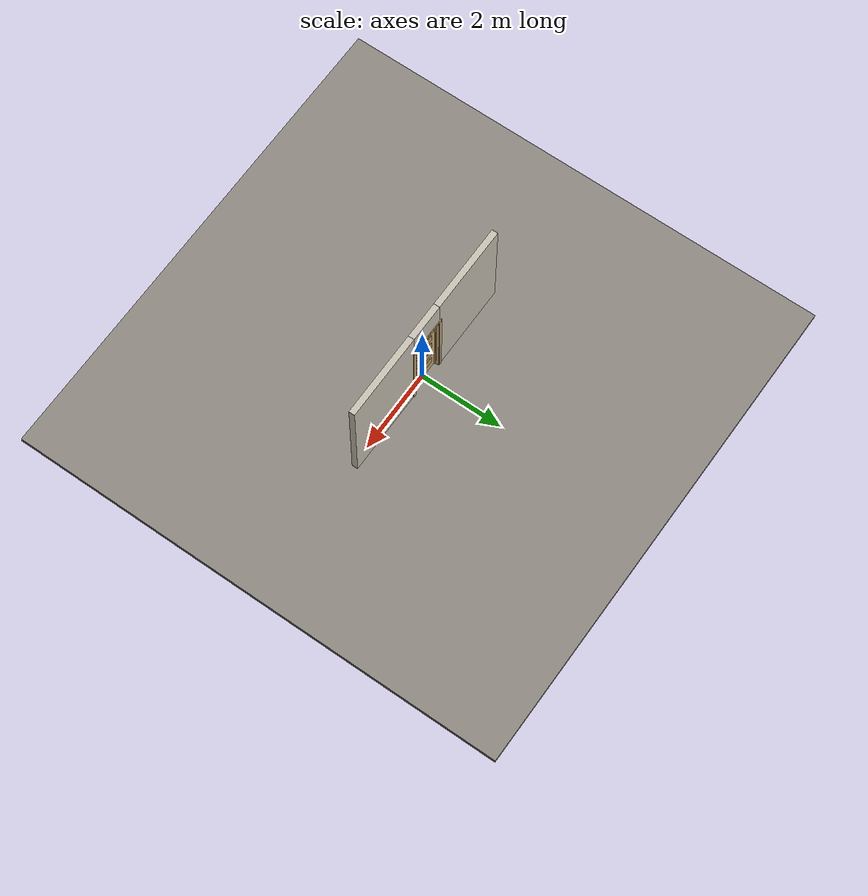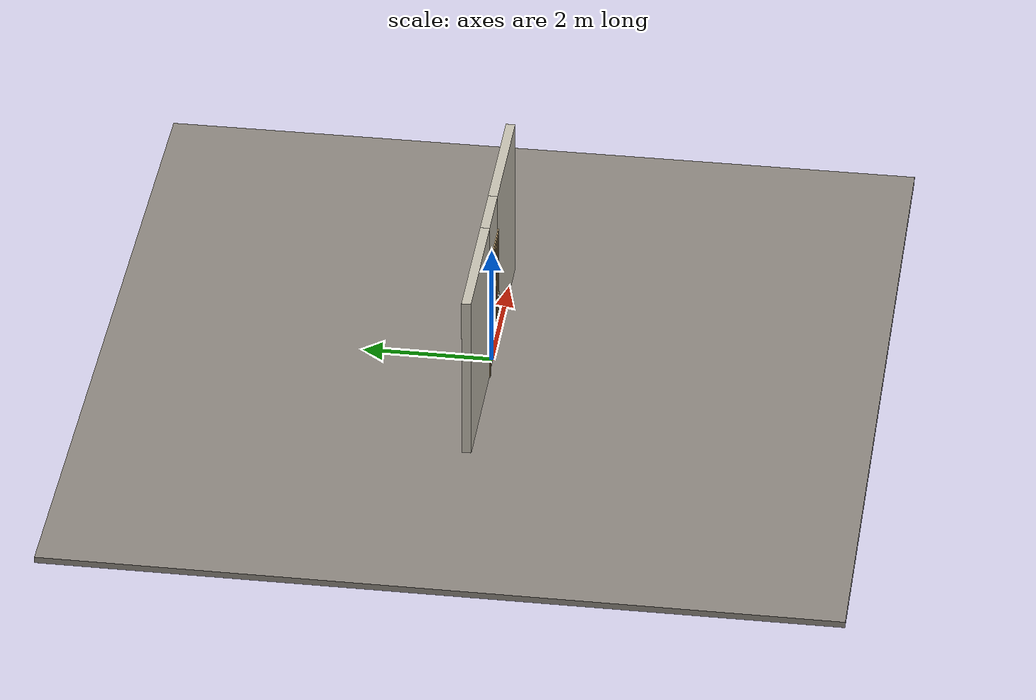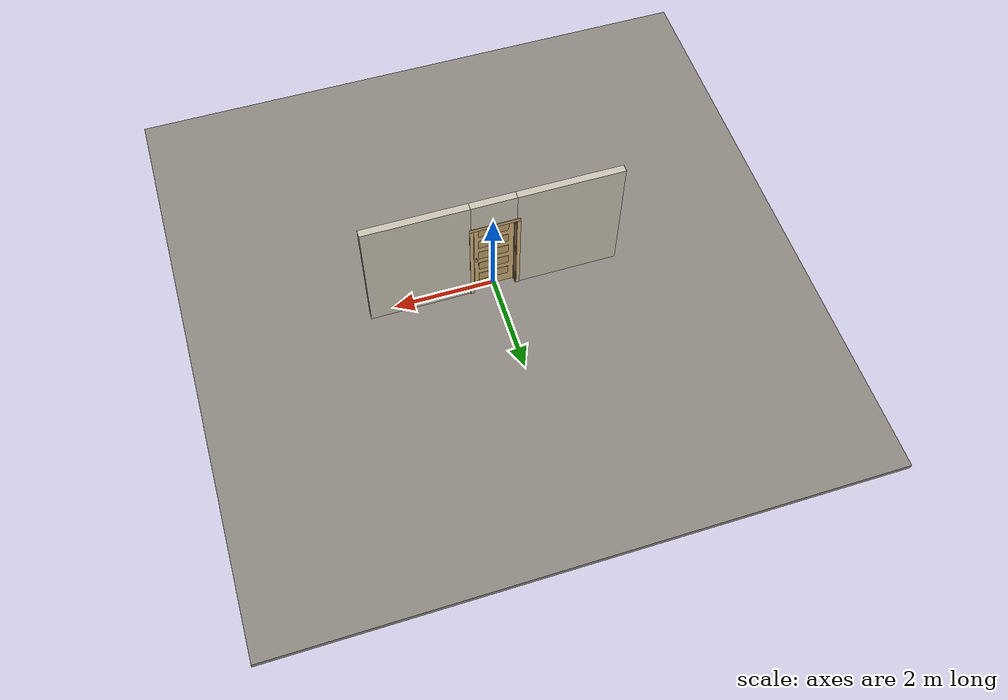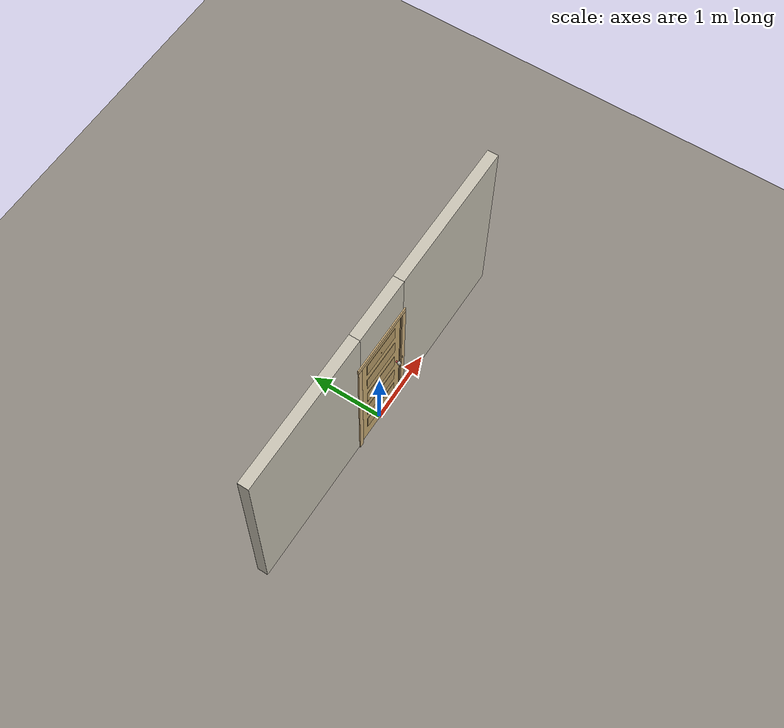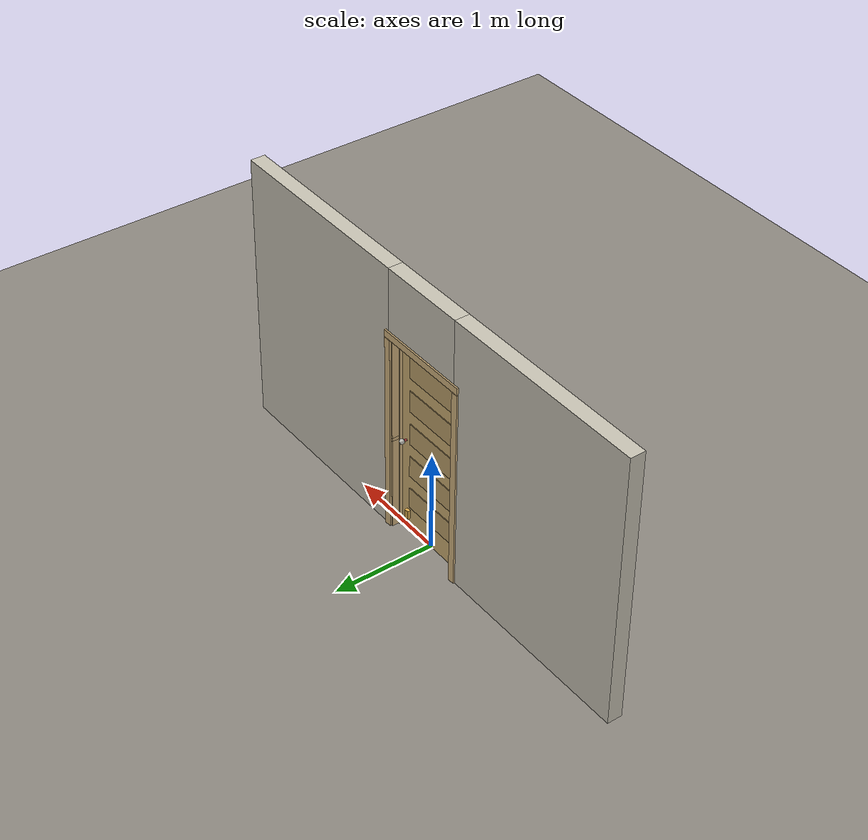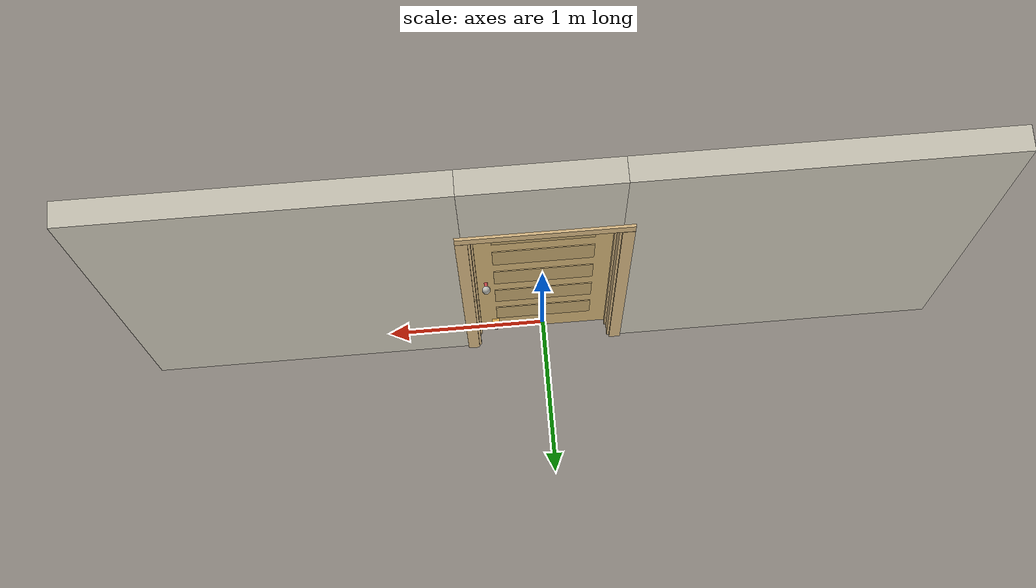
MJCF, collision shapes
<?xml version="1.0" ?>
<mujoco model="db0348_swing_single_full">
  <compiler angle="radian" meshdir="../../hardware" texturedir="../../textures" autolimits="true" inertiafromgeom="false"/>
  <option timestep="0.002" integrator="implicitfast" cone="elliptic" impratio="10" noslip_iterations="3">
    <flag multiccd="enable"/>
  </option>
  <size memory="16M"/>
  <default>
    <geom condim="4" solref="0.005 1" solimp="0.95 0.99 0.001"/>
    <joint solreflimit="0.005 1" solimplimit="0.95 0.99 0.001"/>
    <tendon solreflimit="0.005 1"/>
    <equality solref="0.002 1"/>
  </default>
  <visual>
    <headlight ambient="0.4 0.4 0.4" diffuse="0.7 0.7 0.7" specular="0.2 0.2 0.2"/>
    <quality shadowsize="4096"/>
    <map znear="0.01" zfar="60"/>
  </visual>
  <asset>
    <mesh name="hinge_96510cf394" file="hinge_96510cf394.obj"/>
    <mesh name="hinge_jamb_7fd4ca52b2" file="hinge_jamb_7fd4ca52b2.obj"/>
    <mesh name="knob_0ccd68d739" file="knob_0ccd68d739.obj"/>
    <mesh name="wreath_86a3f1bf8b" file="wreath_86a3f1bf8b.obj"/>
    <material name="mat_floor" rgba="0.55 0.53 0.5 1" specular="0.2" shininess="0.15" reflectance="0"/>
    <material name="mat_wall" rgba="0.78 0.76 0.7 1" specular="0.2" shininess="0.1" reflectance="0"/>
    <material name="mat_leaf" rgba="0.8 0.68 0.45 1" specular="0.2" shininess="0.5" reflectance="0"/>
    <material name="mat_leaf_panel" rgba="0.736 0.626 0.414 1" specular="0.2" shininess="0.5" reflectance="0"/>
    <material name="mat_hinge" rgba="0.65 0.66 0.68 1" specular="0.74" shininess="0.5" reflectance="0.36"/>
    <material name="mat_op_hpl" rgba="0.75 0.75 0.72 1" specular="0.2" shininess="0.65" reflectance="0"/>
    <material name="mat_trim" rgba="0.85 0.66 0.3 1" specular="0.8" shininess="0.75" reflectance="0.4"/>
    <material name="mat_bolt" rgba="0.85 0.66 0.3 1" specular="0.8" shininess="0.75" reflectance="0.4"/>
    <material name="mat_frame" rgba="0.82 0.7 0.5 1" specular="0.2" shininess="0.45" reflectance="0"/>
    <material name="mat_seal" rgba="0.1 0.1 0.1 1" specular="0.2" shininess="0.1" reflectance="0"/>
    <material name="mat_wreath" rgba="0.12 0.3 0.12 1" specular="0.2" shininess="0.05" reflectance="0"/>
    <material name="mat_wreath_hook" rgba="0.85 0.66 0.3 1" specular="0.8" shininess="0.75" reflectance="0.4"/>
    <material name="mat_kickdown" rgba="0.85 0.66 0.3 1" specular="0.8" shininess="0.75" reflectance="0.4"/>
    <material name="mat_kickdown_pad" rgba="0.92 0.92 0.9 1" specular="0.2" shininess="0.6" reflectance="0"/>
    <texture name="skybox" type="skybox" builtin="gradient" rgb1="0.6 0.7 0.85" rgb2="0.9 0.92 0.95" width="256" height="256"/>
  </asset>
  <worldbody>
    <light name="sun" pos="1.5 -2.5 4" dir="-0.3 0.5 -0.8" directional="true" diffuse="0.8 0.8 0.8" specular="0.3 0.3 0.3" castshadow="true"/>
    <light name="fill" pos="-1.5 2.5 3" dir="0.3 -0.5 -0.7" directional="true" diffuse="0.35 0.35 0.4" castshadow="false"/>
    <camera name="robot_view" pos="0 -2.450125 1.698475" xyaxes="1 0 0 0 0.26963 0.962964" fovy="52"/>
    <camera name="far_view" pos="0 2.546125 1.698475" xyaxes="-1 0 0 0 -0.26963 0.962964" fovy="52"/>
    <camera name="iso" pos="1.898575 -2.050425 2.098175" xyaxes="0.741536 0.670913 0 -0.242917 0.268487 0.932151" fovy="46"/>
    <camera name="detail_handle" pos="0.526 -0.86375 1.245" xyaxes="0.97561 0.219512 0 -0.070934 0.315262 0.94635" fovy="38"/>
    <geom name="floor" type="box" size="6 6 0.05" pos="0 0 -0.05" material="mat_floor" group="0" contype="1" conaffinity="1" friction="0.8 0.005 0.0001" density="2400"/>
    <geom name="wall_left" type="box" size="1.0355 0.0725 1.35" pos="-1.4645 0.048 1.35" material="mat_wall" group="0" contype="1" conaffinity="1" friction="0.6 0.005 0.0001" density="800"/>
    <geom name="wall_right" type="box" size="1.0205 0.0725 1.35" pos="1.4795 0.048 1.35" material="mat_wall" group="0" contype="1" conaffinity="1" friction="0.6 0.005 0.0001" density="800"/>
    <geom name="wall_header" type="box" size="0.444 0.0725 0.3265" pos="0.015 0.048 2.3735" material="mat_wall" group="0" contype="1" conaffinity="1" friction="0.6 0.005 0.0001" density="800"/>
    <geom name="hinge_0_jamb" type="mesh" mesh="hinge_jamb_7fd4ca52b2" pos="-0.407 -0.0245 0.259" material="mat_hinge" group="1" contype="0" conaffinity="0" density="7850"/>
    <geom name="hinge_1_jamb" type="mesh" mesh="hinge_jamb_7fd4ca52b2" pos="-0.407 -0.0245 1.0015" material="mat_hinge" group="1" contype="0" conaffinity="0" density="7850"/>
    <geom name="hinge_2_jamb" type="mesh" mesh="hinge_jamb_7fd4ca52b2" pos="-0.407 -0.0245 1.814" material="mat_hinge" group="1" contype="0" conaffinity="0" density="7850"/>
    <geom name="jamb_hinge" type="box" size="0.0095 0.0725 0.999" pos="-0.4195 0.048 0.999" material="mat_frame" group="0" contype="1" conaffinity="1" friction="0.6 0.005 0.0001" density="400"/>
    <geom name="strike_965_wall_n" type="box" size="0.0245 0.056325 0.0167" pos="0.4345 0.064175 0.965" material="mat_frame" group="0" contype="1" conaffinity="1" friction="0.6 0.005 0.0001" density="400"/>
    <geom name="strike_965_wall_p" type="box" size="0.0245 0.008 0.0167" pos="0.4345 -0.01585 0.965" material="mat_frame" group="0" contype="1" conaffinity="1" friction="0.6 0.005 0.0001" density="400"/>
    <geom name="strike_965_ramp" type="box" size="0.0245 0.01649 0.0167" pos="0.439136 -0.028673 0.965" quat="0.977148 0 0 0.212558" material="mat_frame" group="0" contype="1" conaffinity="1" friction="0.12 0.005 0.0001" density="400"/>
    <geom name="strike_965_back" type="box" size="0.01615 0.00785 0.0167" pos="0.44285 0 0.965" material="mat_frame" group="0" contype="1" conaffinity="1" friction="0.6 0.005 0.0001" density="400"/>
    <geom name="jamb_strike_0" type="box" size="0.0245 0.0725 0.47415" pos="0.4345 0.048 0.47415" material="mat_frame" group="0" contype="1" conaffinity="1" friction="0.6 0.005 0.0001" density="400"/>
    <geom name="jamb_strike_1" type="box" size="0.0245 0.0725 0.50815" pos="0.4345 0.048 1.48985" material="mat_frame" group="0" contype="1" conaffinity="1" friction="0.6 0.005 0.0001" density="400"/>
    <geom name="jamb_head" type="box" size="0.444 0.0725 0.0095" pos="0.015 0.048 2.0075" material="mat_frame" group="0" contype="1" conaffinity="1" friction="0.6 0.005 0.0001" density="400"/>
    <geom name="head_stud" type="box" size="0.444 0.0725 0.015" pos="0.015 0.048 2.032" material="mat_wall" group="0" contype="1" conaffinity="1" friction="0.6 0.005 0.0001" density="500"/>
    <geom name="stop_hinge" type="box" size="0.0055 0.016 0.999" pos="-0.4045 0.034 0.999" material="mat_frame" group="0" contype="1" conaffinity="1" friction="0.6 0.005 0.0001" density="400"/>
    <geom name="stop_strike" type="box" size="0.0055 0.016 0.999" pos="0.4045 0.034 0.999" material="mat_frame" group="0" contype="1" conaffinity="1" friction="0.6 0.005 0.0001" density="400"/>
    <geom name="stop_head" type="box" size="0.41 0.016 0.0055" pos="0 0.034 1.9925" material="mat_frame" group="0" contype="1" conaffinity="1" friction="0.6 0.005 0.0001" density="400"/>
    <geom name="seal_hinge" type="box" size="0.004 0.002 0.999" pos="-0.407 0.0195 0.999" material="mat_seal" group="1" contype="0" conaffinity="0" density="1100"/>
    <geom name="seal_strike" type="box" size="0.004 0.002 0.999" pos="0.407 0.0195 0.999" material="mat_seal" group="1" contype="0" conaffinity="0" density="1100"/>
    <geom name="seal_head" type="box" size="0.39 0.002 0.008" pos="0 0.0195 1.986" material="mat_seal" group="1" contype="0" conaffinity="0" density="1100"/>
    <geom name="casing_l_n" type="box" size="0.035 0.008 1.0085" pos="-0.459 -0.0325 0.999" material="mat_frame" group="2" contype="0" conaffinity="0" density="400"/>
    <geom name="casing_r_n" type="box" size="0.035 0.008 1.0085" pos="0.459 -0.0325 0.999" material="mat_frame" group="2" contype="0" conaffinity="0" density="400"/>
    <geom name="casing_h_n" type="box" size="0.494 0.008 0.035" pos="0 -0.0325 2.047" material="mat_frame" group="2" contype="0" conaffinity="0" density="400"/>
    <geom name="casing_l_p" type="box" size="0.035 0.008 1.0085" pos="-0.459 0.1285 0.999" material="mat_frame" group="2" contype="0" conaffinity="0" density="400"/>
    <geom name="casing_r_p" type="box" size="0.035 0.008 1.0085" pos="0.459 0.1285 0.999" material="mat_frame" group="2" contype="0" conaffinity="0" density="400"/>
    <geom name="casing_h_p" type="box" size="0.494 0.008 0.035" pos="0 0.1285 2.047" material="mat_frame" group="2" contype="0" conaffinity="0" density="400"/>
    <site name="approach_point" pos="0 -1.5 0" quat="1 0 0 0" size="0.05" rgba="0.2 0.9 0.2 0.5" group="4"/>
    <site name="goal_point" pos="0 1.5 0" quat="1 0 0 0" size="0.05" rgba="0.2 0.9 0.2 0.5" group="4"/>
    <site name="door_plane_center" pos="0 0 0.999" quat="1 0 0 0" size="0.02" rgba="0.2 0.9 0.2 0.5" group="4"/>
    <body name="leaf" pos="-0.41 0 0">
      <inertial pos="0.415083 -0.001488 0.995371" mass="40.436722" quat="-0.495952 0.489954 0.50679 0.50709" diaginertia="2.272316987 13.801425052 16.050262709"/>
      <joint name="leaf_hinge" type="hinge" axis="0 0 -1" pos="0.003 -0.0245 0" limited="true" range="0 2.356194" solreflimit="0.02 1" damping="0.206618" frictionloss="5.421391" armature="0.02"/>
      <geom name="leaf_slab" type="box" size="0.4065 0.0175 0.9925" pos="0.4095 0 1.0015" material="mat_leaf" group="0" contype="1" conaffinity="1" friction="0.35 0.005 0.0001" density="1"/>
      <geom name="leaf_panel_0_n" type="box" size="0.2965 0.003 0.11074" pos="0.4095 -0.0205 0.35809" material="mat_leaf_panel" group="1" contype="0" conaffinity="0" density="1"/>
      <geom name="leaf_panel_0_p" type="box" size="0.2965 0.003 0.11074" pos="0.4095 0.0205 0.35809" material="mat_leaf_panel" group="1" contype="0" conaffinity="0" density="1"/>
      <geom name="leaf_panel_1_n" type="box" size="0.2965 0.003 0.11074" pos="0.4095 -0.0205 0.70957" material="mat_leaf_panel" group="1" contype="0" conaffinity="0" density="1"/>
      <geom name="leaf_panel_1_p" type="box" size="0.2965 0.003 0.11074" pos="0.4095 0.0205 0.70957" material="mat_leaf_panel" group="1" contype="0" conaffinity="0" density="1"/>
      <geom name="leaf_panel_2_n" type="box" size="0.2965 0.003 0.11074" pos="0.4095 -0.0205 1.06105" material="mat_leaf_panel" group="1" contype="0" conaffinity="0" density="1"/>
      <geom name="leaf_panel_2_p" type="box" size="0.2965 0.003 0.11074" pos="0.4095 0.0205 1.06105" material="mat_leaf_panel" group="1" contype="0" conaffinity="0" density="1"/>
      <geom name="leaf_panel_3_n" type="box" size="0.2965 0.003 0.11074" pos="0.4095 -0.0205 1.41253" material="mat_leaf_panel" group="1" contype="0" conaffinity="0" density="1"/>
      <geom name="leaf_panel_3_p" type="box" size="0.2965 0.003 0.11074" pos="0.4095 0.0205 1.41253" material="mat_leaf_panel" group="1" contype="0" conaffinity="0" density="1"/>
      <geom name="leaf_panel_4_n" type="box" size="0.2965 0.003 0.11074" pos="0.4095 -0.0205 1.76401" material="mat_leaf_panel" group="1" contype="0" conaffinity="0" density="1"/>
      <geom name="leaf_panel_4_p" type="box" size="0.2965 0.003 0.11074" pos="0.4095 0.0205 1.76401" material="mat_leaf_panel" group="1" contype="0" conaffinity="0" density="1"/>
      <geom name="hinge_0" type="mesh" mesh="hinge_96510cf394" pos="0.003 -0.0245 0.259" material="mat_hinge" group="1" contype="0" conaffinity="0" density="7850"/>
      <geom name="hinge_1" type="mesh" mesh="hinge_96510cf394" pos="0.003 -0.0245 1.0015" material="mat_hinge" group="1" contype="0" conaffinity="0" density="7850"/>
      <geom name="hinge_2" type="mesh" mesh="hinge_96510cf394" pos="0.003 -0.0245 1.814" material="mat_hinge" group="1" contype="0" conaffinity="0" density="7850"/>
      <geom name="leaf_latch_bolt_faceplate" type="box" size="0.0006 0.01235 0.0267" pos="0.8154 0 0.965" material="mat_bolt" group="1" contype="0" conaffinity="0" density="8500"/>
      <geom name="wreath" type="mesh" mesh="wreath_86a3f1bf8b" pos="0.4095 -0.0175 1.5573" quat="0.707107 0.707107 0 0" material="mat_wreath" group="2" contype="0" conaffinity="0" density="200"/>
      <geom name="wreath_hook" type="cylinder" size="0.004 0.008" pos="0.4095 -0.0245 1.7453" quat="0.707107 -0.707107 0 0" material="mat_wreath_hook" group="2" contype="0" conaffinity="0" density="8500"/>
      <geom name="kickdown_housing" type="box" size="0.022 0.016 0.045" pos="0.716 0.0335 0.169" material="mat_kickdown" group="2" contype="0" conaffinity="0" density="8500"/>
      <geom name="kickdown_arm" type="box" size="0.012 0.006 0.045" pos="0.716 0.0295 0.104" material="mat_kickdown" group="2" contype="0" conaffinity="0" density="8500"/>
      <geom name="kickdown_pad" type="cylinder" size="0.014 0.006" pos="0.716 0.0295 0.061" material="mat_kickdown_pad" group="2" contype="0" conaffinity="0" density="1200"/>
      <site name="leaf_edge_mid" pos="0.816 0 0.9925" quat="1 0 0 0" size="0.02" rgba="0.2 0.9 0.2 0.5" group="4"/>
      <body name="leaf_handle" pos="0.756 0 0.965">
        <inertial pos="0 0 0" mass="1.150081" quat="0.5 0.5 0.5 0.5" diaginertia="0.000298658 0.003840959 0.003840959"/>
        <joint name="leaf_handle_hinge" type="hinge" axis="0 -1 0" limited="true" range="0 0.85" damping="0.128366" frictionloss="0.032" stiffness="0.4" springref="-0.5" armature="0.01"/>
        <geom name="leaf_handle_spindle" type="cylinder" size="0.006 0.0255" pos="0 0 0" quat="0.707107 -0.707107 0 0" material="mat_op_hpl" group="1" contype="0" conaffinity="0" density="7850"/>
        <geom name="leaf_handle_knob_n" type="mesh" mesh="knob_0ccd68d739" pos="0 -0.0175 0" quat="0.707107 0.707107 0 0" material="mat_op_hpl" group="1" contype="0" conaffinity="0" density="3000"/>
        <geom name="leaf_handle_knob_col_n" type="sphere" size="0.02475" pos="0 -0.06375 0" material="mat_op_hpl" group="0" contype="1" conaffinity="1" friction="0.9 0.01 0.0001" density="3000"/>
        <geom name="leaf_handle_knob_neck_n" type="cylinder" size="0.011 0.012" pos="0 -0.0295 0" quat="0.707107 -0.707107 0 0" material="mat_op_hpl" group="3" contype="1" conaffinity="1" rgba="0.8 0.3 0.3 0.25" friction="0.6 0.005 0.0001" density="3000"/>
        <geom name="leaf_handle_knob_p" type="mesh" mesh="knob_0ccd68d739" pos="0 0.0175 0" quat="-0.707107 0.707107 0 0" material="mat_op_hpl" group="1" contype="0" conaffinity="0" density="3000"/>
        <geom name="leaf_handle_knob_col_p" type="sphere" size="0.02475" pos="0 0.06375 0" material="mat_op_hpl" group="0" contype="1" conaffinity="1" friction="0.9 0.01 0.0001" density="3000"/>
        <geom name="leaf_handle_knob_neck_p" type="cylinder" size="0.011 0.012" pos="0 0.0295 0" quat="0.707107 -0.707107 0 0" material="mat_op_hpl" group="3" contype="1" conaffinity="1" rgba="0.8 0.3 0.3 0.25" friction="0.6 0.005 0.0001" density="3000"/>
        <site name="leaf_handle_grip_n" pos="0 -0.06375 0" quat="1 0 0 0" size="0.012" rgba="0.2 0.9 0.2 0.5" group="4"/>
        <site name="leaf_handle_grip_p" pos="0 0.06375 0" quat="1 0 0 0" size="0.012" rgba="0.2 0.9 0.2 0.5" group="4"/>
      </body>
      <body name="leaf_latch_bolt" pos="0.816 0 0.965">
        <inertial pos="-0.00865 0 0" mass="0.041419" quat="0.92388 -0.382683 0 0" diaginertia="0.000000798 0.000005598 0.000005598"/>
        <joint name="leaf_latch_bolt_slide" type="slide" axis="-1 0 0" limited="true" range="0 0.0127" damping="2" frictionloss="0.3" stiffness="300" springref="-0.008333" armature="0.1"/>
        <geom name="leaf_latch_bolt_capsule" type="capsule" size="0.00635 0.015" pos="-0.00865 0 0" quat="0.707107 0 0.707107 0" material="mat_bolt" group="0" contype="1" conaffinity="1" friction="0.2 0.005 0.0001" density="8500"/>
      </body>
    </body>
  </worldbody>
  <tendon>
    <fixed name="leaf_latch_bolt_coupling" limited="true" range="0 10">
      <joint joint="leaf_latch_bolt_slide" coef="1"/>
      <joint joint="leaf_handle_hinge" coef="-0.016933"/>
    </fixed>
  </tendon>
  <sensor>
    <jointpos name="leaf_hinge_pos" joint="leaf_hinge"/>
    <jointvel name="leaf_hinge_vel" joint="leaf_hinge"/>
    <jointpos name="leaf_handle_hinge_pos" joint="leaf_handle_hinge"/>
    <jointvel name="leaf_handle_hinge_vel" joint="leaf_handle_hinge"/>
    <jointpos name="leaf_latch_bolt_slide_pos" joint="leaf_latch_bolt_slide"/>
    <jointvel name="leaf_latch_bolt_slide_vel" joint="leaf_latch_bolt_slide"/>
  </sensor>
</mujoco>
